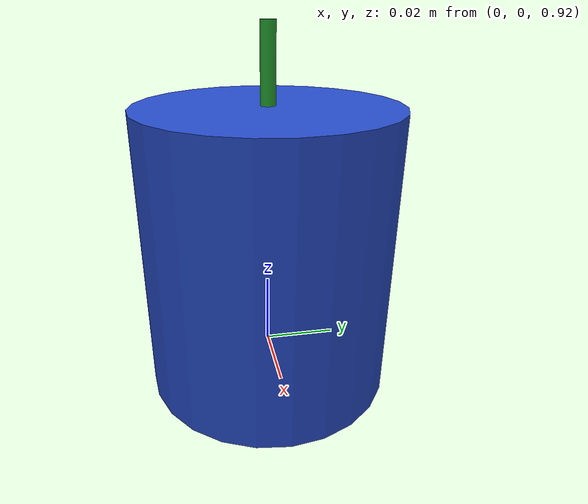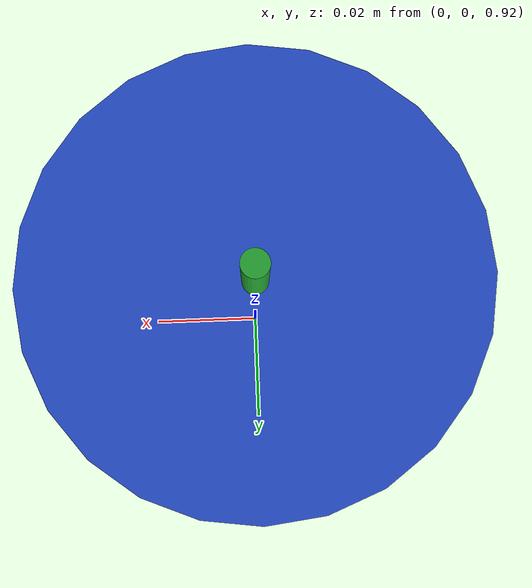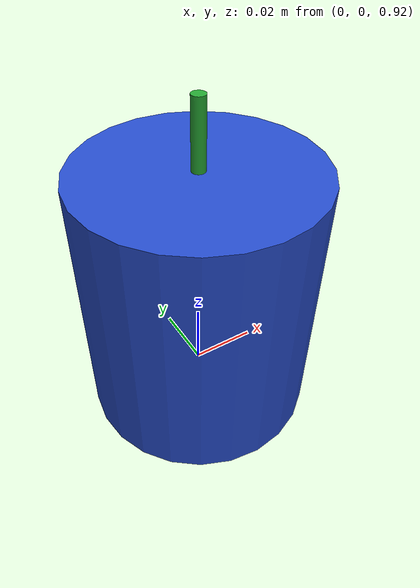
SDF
<?xml version="1.0" ?>
<sdf version="1.4">
  <world name="default">
    <include>
      <uri>model://ground_plane</uri>
    </include>

  <model name='pepper_plant'>
    <pose>0 0 1 0 0 0</pose>
    <link name='peduncle'>
      <inertial>
        <pose>0 0 0 0 -0 0</pose>
        <mass>0.005</mass>
        <inertia>
          <ixx>0.0001</ixx>
          <ixy>0</ixy>
          <ixz>0</ixz>
          <iyy>0.0001</iyy>
          <iyz>0</iyz>
          <izz>0.0001</izz>
        </inertia>
      </inertial>
      <collision name='peduncle_collision'>
        <pose>0 0 0 0 -0 0</pose>
        <geometry>
          <cylinder>
            <length>0.02</length>
            <radius>0.002</radius>
          </cylinder>
        </geometry>
        <surface>
          <contact>
            <ode/>
          </contact>
          <friction>
            <ode/>
          </friction>
        </surface>
      </collision>
      <visual name='peduncle_visual'>
        <pose>0 0 0 0 -0 0</pose>
        <geometry>
          <cylinder>
            <length>0.02</length>
            <radius>0.002</radius>
          </cylinder>
        </geometry>
        <material>
          <script>
            <name>Gazebo/Green</name>
            <uri>file://media/materials/scripts/gazebo.material</uri>
          </script>
        </material>
      </visual>
    </link>
    <link name='fruit'>
      <inertial>
        <pose>0 0 -0.05 0 -0 0</pose>
        <mass>0.15</mass>
        <inertia>
          <ixx>0.001</ixx>
          <ixy>0</ixy>
          <ixz>0</ixz>
          <iyy>0.001</iyy>
          <iyz>0</iyz>
          <izz>0.001</izz>
        </inertia>
      </inertial>
      <collision name='fruit_collision'>
        <pose>0 0 -0.05 0 -0 0</pose>
        <geometry>
          <cylinder>
            <length>0.08</length>
            <radius>0.035</radius>
          </cylinder>
        </geometry>
        <surface>
          <contact>
            <ode/>
          </contact>
          <friction>
            <ode/>
          </friction>
        </surface>
      </collision>
      <visual name='fruit_visual'>
        <pose>0 0 -0.05 0 -0 0</pose>
        <geometry>
          <cylinder>
            <length>0.08</length>
            <radius>0.035</radius>
          </cylinder>
        </geometry>
        <material>
          <script>
            <name>Gazebo/Blue</name>
            <uri>file://media/materials/scripts/gazebo.material</uri>
          </script>
        </material>
      </visual>
    </link>
    <joint name="breakable" type="revolute">
      <parent>peduncle</parent>
      <child>fruit</child>
      <axis>
        <xyz>0 0 1</xyz>
        <limit>
          <lower>0.0</lower>
          <upper>0.0</upper>
        </limit>
        <use_parent_model_frame>true</use_parent_model_frame>
      </axis>
      <physics>
        <ode>
          <erp>1</erp>
          <cfm>1</cfm>
        </ode>
      </physics>
      <sensor name="force_torque" type="force_torque">
        <always_on>true</always_on>
        <update_rate>1000</update_rate>
        <plugin name="breakable" filename="libBreakableJointPlugin.so">
          <breaking_force_N>10</breaking_force_N>
        </plugin>
      </sensor>
    </joint>
    <joint name="breakable2" type="revolute">
      <parent>world</parent>
      <child>peduncle</child>
      <axis>
        <xyz>0 0 1</xyz>
        <limit>
          <lower>0.0</lower>
          <upper>0.0</upper>
        </limit>
        <use_parent_model_frame>true</use_parent_model_frame>
      </axis>
      <physics>
        <ode>
          <erp>1</erp>
          <cfm>1</cfm>
        </ode>
      </physics>
      <sensor name="force_torque" type="force_torque">
        <always_on>true</always_on>
        <update_rate>1000</update_rate>
        <plugin name="breakable2" filename="libBreakableJointPlugin.so">
          <breaking_force_N>10</breaking_force_N>
        </plugin>
      </sensor>
    </joint>
  </model>

    <physics type="ode" update_rate="100.0">
      <max_step_size>0.001</max_step_size>
      <real_time_factor>1</real_time_factor>
      <real_time_update_rate>1000</real_time_update_rate>
      <gravity>0 0 -9.81</gravity>
    </physics>

  </world>
</sdf>
